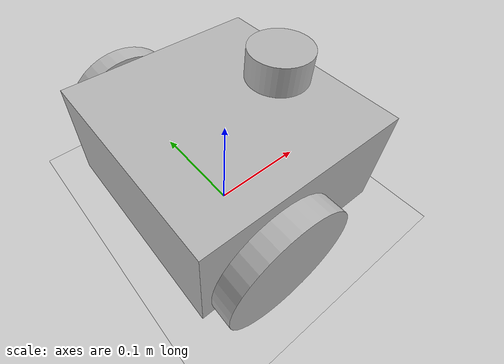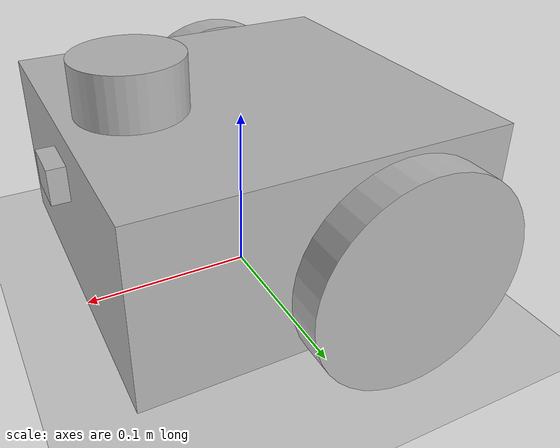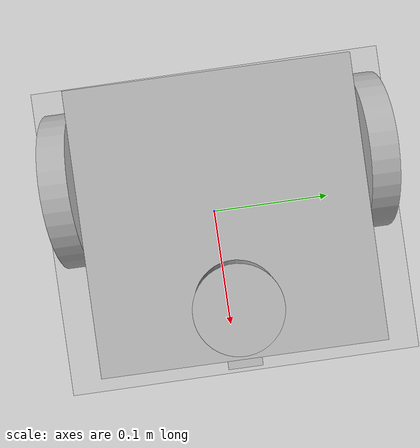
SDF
<sdf version="1.7">
 <world name="default">
  <light name="sun" type="directional">
   <pose>0 0 10 0 -0 0</pose>
   <diffuse>0.8 0.8 0.8 1</diffuse>
   <specular>0.2 0.2 0.2 1</specular>
   <attenuation>
    <range>1000</range>
    <constant>0.9</constant>
    <linear>0.01</linear>
    <quadratic>0.001</quadratic>
   </attenuation>
   <direction>-0.5 0.1 -0.9</direction>
   <spot><inner_angle>0</inner_angle><outer_angle>0</outer_angle><falloff>0</falloff></spot>
  </light>
  <model name="ground_plane">
   <static>1</static>
   <link name="link">
    <collision name="collision">
     <geometry><plane><normal>0 0 1</normal><size>100 100</size></plane></geometry>
     <surface>
      <contact><collide_bitmask>65535</collide_bitmask></contact>
      <friction><ode><mu>100</mu><mu2>50</mu2></ode></friction>
     </surface>
    </collision>
    <visual name="visual">
     <cast_shadows>0</cast_shadows>
     <geometry><plane><normal>0 0 1</normal><size>100 100</size></plane></geometry>
     <material>
      <script><uri>file://media/materials/scripts/gazebo.material</uri><name>Gazebo/Grey</name></script>
     </material>
    </visual>
   </link>
  </model>
  <gravity>0 0 -9.8</gravity>
  <magnetic_field>6e-06 2.3e-05 -4.2e-05</magnetic_field>
  <atmosphere type="adiabatic"/>
  <physics type="ode">
   <max_step_size>0.001</max_step_size>
   <real_time_factor>1</real_time_factor>
   <real_time_update_rate>1000</real_time_update_rate>
  </physics>
  <scene><ambient>0.4 0.4 0.4 1</ambient><background>0.7 0.7 0.7 1</background><shadows>1</shadows></scene>
  <spherical_coordinates>
   <surface_model>EARTH_WGS84</surface_model>
   <latitude_deg>0</latitude_deg>
   <longitude_deg>0</longitude_deg>
   <elevation>0</elevation>
   <heading_deg>0</heading_deg>
  </spherical_coordinates>
  <model name="bot_description">
   <link name="base_link">
    <inertial>
     <pose>0.000208 -0 0.070206 0 -0 0</pose>
     <mass>29.2961</mass>
     <inertia>
      <ixx>0.122079</ixx>
      <ixy>-1.86142e-17</ixy>
      <ixz>-0.00037139</ixz>
      <iyy>0.122475</iyy>
      <iyz>4.38162e-18</iyz>
      <izz>0.195103</izz>
     </inertia>
    </inertial>
    <collision name="base_link_collision">
     <geometry>
      <mesh><scale>1 1 1</scale><uri>/home/arun/arun_ws/src/bot_description/meshes/base_link.STL</uri></mesh>
     </geometry>
    </collision>
    <collision name="base_link_fixed_joint_lump__camera_collision_1">
     <pose>0.1 0 0.092746 0 -0 0</pose>
     <geometry>
      <mesh><scale>1 1 1</scale><uri>/home/arun/arun_ws/src/bot_description/meshes/camera.STL</uri></mesh>
     </geometry>
    </collision>
    <collision name="base_link_fixed_joint_lump__lidar_1_collision_2">
     <pose>0.061 0 0.15 0 -0 0</pose>
     <geometry>
      <mesh><scale>1 1 1</scale><uri>/home/arun/arun_ws/src/bot_description/meshes/lidar_1.STL</uri></mesh>
     </geometry>
    </collision>
    <visual name="base_link_visual">
     <geometry>
      <mesh><scale>1 1 1</scale><uri>/home/arun/arun_ws/src/bot_description/meshes/base_link.STL</uri></mesh>
     </geometry>
    </visual>
    <visual name="base_link_fixed_joint_lump__camera_visual_1">
     <pose>0.1 0 0.092746 0 -0 0</pose>
     <geometry>
      <mesh><scale>1 1 1</scale><uri>/home/arun/arun_ws/src/bot_description/meshes/camera.STL</uri></mesh>
     </geometry>
    </visual>
    <visual name="base_link_fixed_joint_lump__lidar_1_visual_2">
     <pose>0.061 0 0.15 0 -0 0</pose>
     <geometry>
      <mesh><scale>1 1 1</scale><uri>/home/arun/arun_ws/src/bot_description/meshes/lidar_1.STL</uri></mesh>
     </geometry>
    </visual>
    <sensor name="camera1" type="camera">
     <update_rate>30</update_rate>
     <camera name="head">
      <horizontal_fov>1.39626</horizontal_fov>
      <image><width>800</width><height>800</height><format>R8G8B8</format></image>
      <clip><near>0.02</near><far>300</far></clip>
      <noise><type>gaussian</type><mean>0</mean><stddev>0.007</stddev></noise>
     </camera>
     <plugin name="camera_controller" filename="libgazebo_ros_camera.so">
      <alwaysOn>1</alwaysOn>
      <updateRate>0.0</updateRate>
      <cameraName>camera1</cameraName>
      <imageTopicName>image_raw</imageTopicName>
      <cameraInfoTopicName>camera_info</cameraInfoTopicName>
      <frameName>camera</frameName>
      <hackBaseline>0.07</hackBaseline>
      <distortionK1>0.0</distortionK1>
      <distortionK2>0.0</distortionK2>
      <distortionK3>0.0</distortionK3>
      <distortionT1>0.0</distortionT1>
      <distortionT2>0.0</distortionT2>
      <robotNamespace>/</robotNamespace>
     </plugin>
     <pose>0.1 0 0.092746 0 -0 0</pose>
    </sensor>
    <sensor name="head_hokuyo_sensor" type="ray">
     <visualize>1</visualize>
     <update_rate>40</update_rate>
     <ray>
      <scan>
       <horizontal>
        <samples>720</samples>
        <resolution>1</resolution>
        <min_angle>-1.5708</min_angle>
        <max_angle>1.5708</max_angle>
       </horizontal>
       <vertical><samples>1</samples><min_angle>0</min_angle><max_angle>0</max_angle></vertical>
      </scan>
      <range><min>0.1</min><max>30</max><resolution>0.01</resolution></range>
      <noise><type>gaussian</type><mean>0</mean><stddev>0.01</stddev></noise>
     </ray>
     <plugin name="gazebo_ros_head_hokuyo_controller" filename="libgazebo_ros_laser.so">
      <topicName>/scan</topicName>
      <frameName>lidar_1</frameName>
      <robotNamespace>/</robotNamespace>
     </plugin>
     <pose>0.061 0 0.15 0 -0 0</pose>
    </sensor>
   </link>
   <joint name="cw_joint" type="revolute">
    <pose relative_to="base_link">0.061 0 0.02 1.5708 0 0.582927</pose>
    <parent>base_link</parent>
    <child>castor_wheel</child>
    <axis>
     <xyz>0 1 0</xyz>
     <limit><lower>-1e+16</lower><upper>1e+16</upper></limit>
     <dynamics><spring_reference>0</spring_reference><spring_stiffness>0</spring_stiffness></dynamics>
    </axis>
   </joint>
   <link name="castor_wheel">
    <pose relative_to="cw_joint">0 0 0 0 -0 0</pose>
    <inertial>
     <pose>0 -0.0075 0 0 -0 0</pose>
     <mass>0.0167552</mass>
     <inertia>
      <ixx>1.73835e-06</ixx>
      <ixy>-8.43693e-23</ixy>
      <ixz>0</ixz>
      <iyy>2.68083e-06</iyy>
      <iyz>1.04486e-22</iyz>
      <izz>1.73835e-06</izz>
     </inertia>
    </inertial>
    <collision name="castor_wheel_collision">
     <geometry>
      <mesh><scale>1 1 1</scale><uri>/home/arun/arun_ws/src/bot_description/meshes/castor_wheel.STL</uri></mesh>
     </geometry>
    </collision>
    <visual name="castor_wheel_visual">
     <geometry>
      <mesh><scale>1 1 1</scale><uri>/home/arun/arun_ws/src/bot_description/meshes/castor_wheel.STL</uri></mesh>
     </geometry>
    </visual>
   </link>
   <joint name="lw_joint" type="revolute">
    <pose relative_to="base_link">-0.035 0.115 0.06 -1.5708 0 0</pose>
    <parent>base_link</parent>
    <child>left_wheel</child>
    <axis>
     <xyz>0 0 1</xyz>
     <limit><lower>-1e+16</lower><upper>1e+16</upper></limit>
     <dynamics><spring_reference>0</spring_reference><spring_stiffness>0</spring_stiffness></dynamics>
    </axis>
   </joint>
   <link name="left_wheel">
    <pose relative_to="lw_joint">0 0 0 0 -0 0</pose>
    <inertial>
     <mass>0.226195</mass>
     <inertia>
      <ixx>0.000211115</ixx>
      <ixy>6.49392e-20</ixy>
      <ixz>5.39889e-21</ixz>
      <iyy>0.000211115</iyy>
      <iyz>-1.86656e-20</iyz>
      <izz>0.00040715</izz>
     </inertia>
    </inertial>
    <collision name="left_wheel_collision">
     <geometry>
      <mesh><scale>1 1 1</scale><uri>/home/arun/arun_ws/src/bot_description/meshes/left_wheel.STL</uri></mesh>
     </geometry>
    </collision>
    <visual name="left_wheel_visual">
     <geometry>
      <mesh><scale>1 1 1</scale><uri>/home/arun/arun_ws/src/bot_description/meshes/left_wheel.STL</uri></mesh>
     </geometry>
    </visual>
   </link>
   <joint name="rw_joint" type="revolute">
    <pose relative_to="base_link">-0.035 -0.115 0.06 1.5708 -0 0</pose>
    <parent>base_link</parent>
    <child>right_wheel</child>
    <axis>
     <xyz>0 0 -1</xyz>
     <limit><lower>-1e+16</lower><upper>1e+16</upper></limit>
     <dynamics><spring_reference>0</spring_reference><spring_stiffness>0</spring_stiffness></dynamics>
    </axis>
   </joint>
   <link name="right_wheel">
    <pose relative_to="rw_joint">0 0 0 0 -0 0</pose>
    <inertial>
     <mass>0.226195</mass>
     <inertia>
      <ixx>0.000211115</ixx>
      <ixy>-2.37875e-20</ixy>
      <ixz>-1.35242e-20</ixz>
      <iyy>0.000211115</iyy>
      <iyz>-5.70225e-21</iyz>
      <izz>0.00040715</izz>
     </inertia>
    </inertial>
    <collision name="right_wheel_collision">
     <geometry>
      <mesh><scale>1 1 1</scale><uri>/home/arun/arun_ws/src/bot_description/meshes/right_wheel.STL</uri></mesh>
     </geometry>
    </collision>
    <visual name="right_wheel_visual">
     <geometry>
      <mesh><scale>1 1 1</scale><uri>/home/arun/arun_ws/src/bot_description/meshes/right_wheel.STL</uri></mesh>
     </geometry>
    </visual>
   </link>
   <static>0</static>
   <plugin name="differential_drive_controller" filename="libgazebo_ros_diff_drive.so">
    <updateRate>100</updateRate>
    <leftJoint>lw_joint</leftJoint>
    <rightJoint>rw_joint</rightJoint>
    <wheelSeparation>0.25</wheelSeparation>
    <wheelDiameter>0.12</wheelDiameter>
    <wheelAcceleration>1.0</wheelAcceleration>
    <wheelTorque>20</wheelTorque>
    <commandTopic>cmd_vel</commandTopic>
    <odometryTopic>odom</odometryTopic>
    <odometryFrame>odom</odometryFrame>
    <robotBaseFrame>base_link</robotBaseFrame>
    <odometrySource>1</odometrySource>
    <publishWheelTF>1</publishWheelTF>
    <publishOdom>1</publishOdom>
    <publishWheelJointState>1</publishWheelJointState>
    <legacyMode>0</legacyMode>
    <robotNamespace>/</robotNamespace>
   </plugin>
   <pose>0.003945 0.007587 -0.000286 0.000519 0.006102 -0.005095</pose>
  </model>
 </world>
</sdf>
